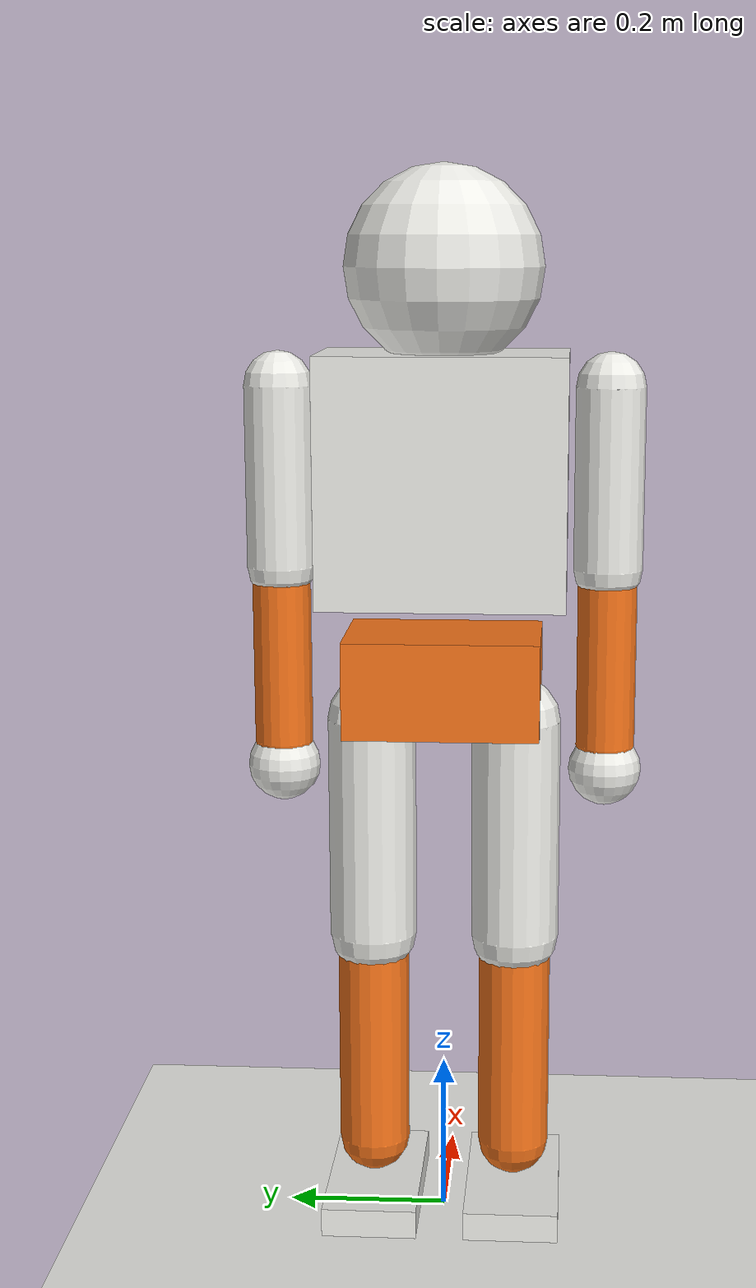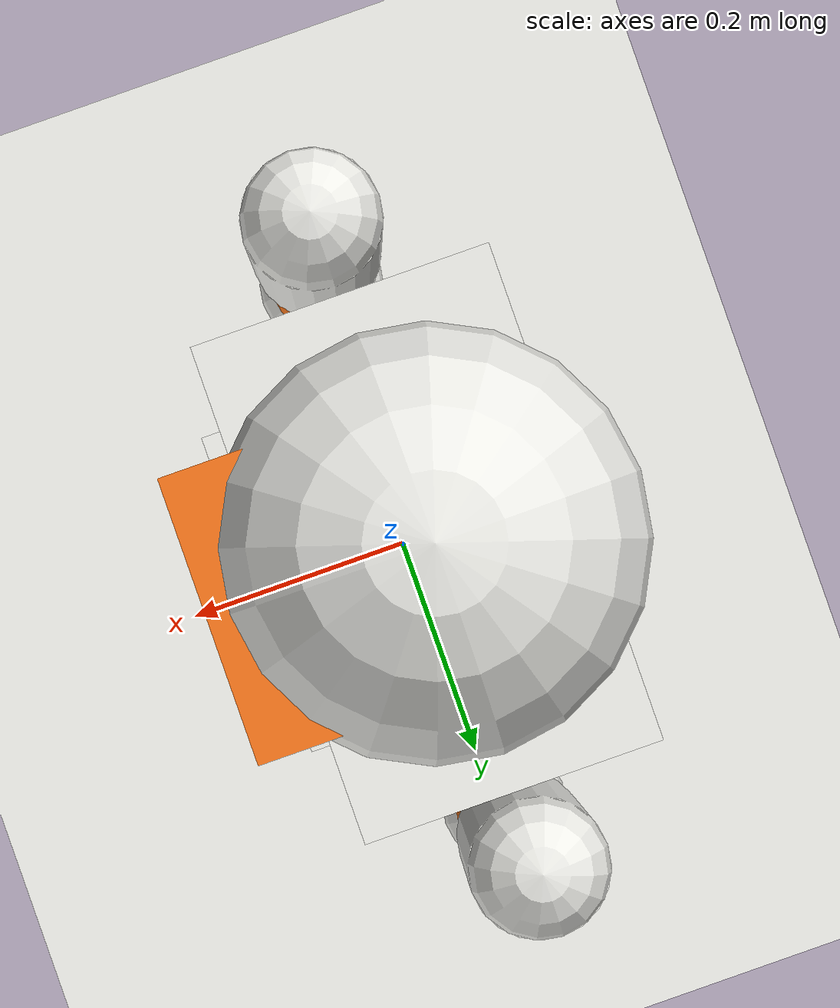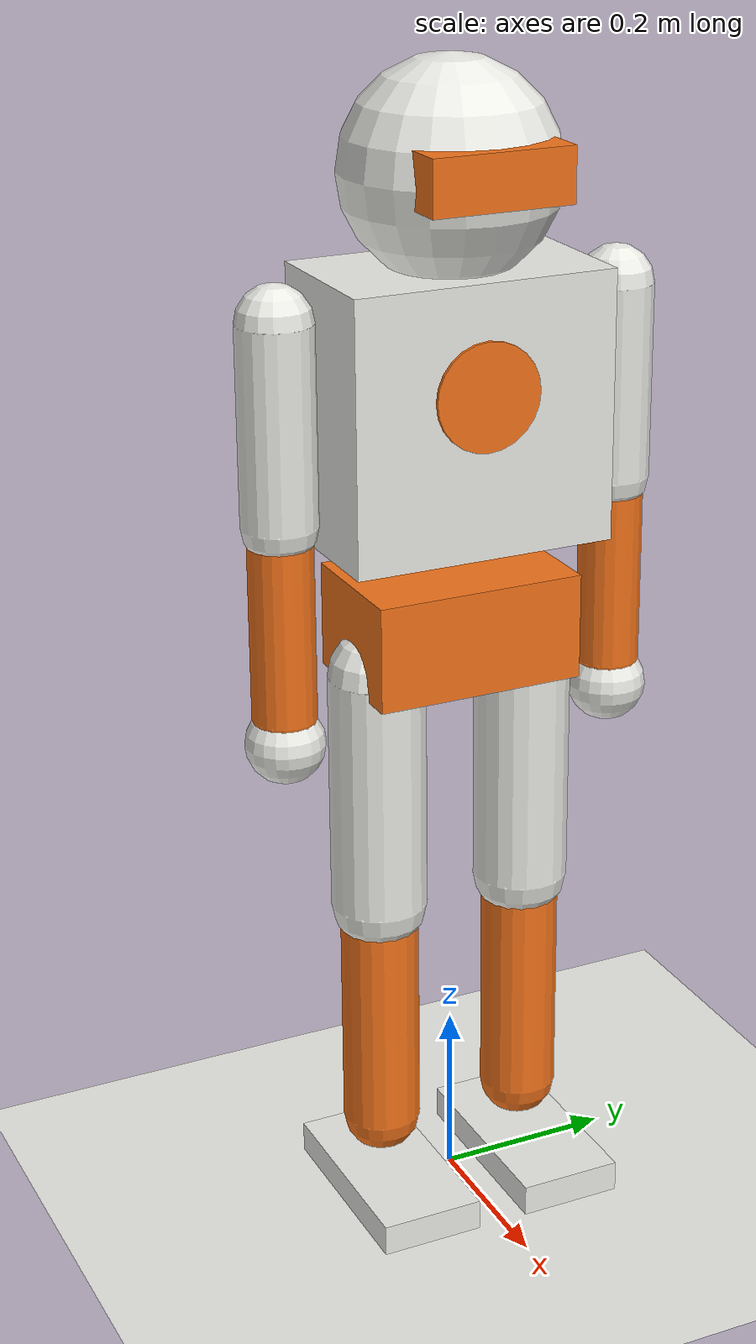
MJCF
<mujoco model="stagger">
  <compiler angle="radian" autolimits="true"/>

  <!-- 2 ms physics step; the policy runs every 10 steps (50 Hz).
       implicitfast integrates joint damping implicitly, which keeps stiff PD gains stable. -->
  <option timestep="0.002" integrator="implicitfast"/>

  <default>
    <joint damping="2" armature="0.01" frictionloss="0.1"/>
    <geom contype="2" conaffinity="1" condim="3" friction="1.0 0.005 0.0001" rgba="0.92 0.92 0.9 1"/>
    <!-- PD position servos. kp is stiffness (N*m/rad); forcerange is the torque limit. -->
    <position kp="30" forcerange="-20 20"/>

    <default class="leg">
      <joint damping="4" armature="0.02"/>
      <position kp="250" forcerange="-90 90"/>
    </default>
    <!-- Ankles must out-muscle gravity: holding the body as an inverted pendulum
         needs total ankle stiffness > m*g*h_com ~ 30*9.81*0.75 ~ 220 N*m/rad. -->
    <default class="ankle">
      <joint damping="3" armature="0.01"/>
      <position kp="200" forcerange="-45 45"/>
    </default>
    <default class="arm">
      <joint damping="1" armature="0.005"/>
      <position kp="30" forcerange="-20 20"/>
    </default>
    <default class="accent">
      <geom rgba="0.95 0.45 0.1 1"/>
    </default>
  </default>

  <visual>
    <headlight ambient="0.35 0.35 0.35" diffuse="0.6 0.6 0.6"/>
    <global offwidth="1280" offheight="720"/>
  </visual>

  <asset>
    <texture name="grid" type="2d" builtin="checker" width="512" height="512" rgb1="0.42 0.42 0.42" rgb2="0.36 0.36 0.36"/>
    <material name="concrete" texture="grid" texrepeat="8 8" reflectance="0.05"/>
  </asset>

  <worldbody>
    <light name="key" pos="2 -2 4" dir="-0.5 0.5 -1" diffuse="0.7 0.7 0.7"/>
    <geom name="floor" type="plane" size="20 20 0.1" material="concrete" contype="1" conaffinity="1"/>

    <!-- Video camera: roughly where the shooter stands (+x, slightly to the side), always aimed at the pelvis. -->
    <camera name="front" mode="targetbody" target="pelvis" pos="2.5 -1.1 1.2"/>

    <!-- pelvis is the floating base. Its height is set by the "stand" keyframe below. -->
    <body name="pelvis" pos="0 0 0.705">
      <freejoint name="root"/>
      <geom name="pelvis" type="box" size="0.08 0.12 0.06" mass="5" class="accent"/>

      <!-- torso and head are welded to the pelvis (no waist / neck joint in v1).
           They are separate bodies only so hits can be grouped into regions. -->
      <body name="torso" pos="0 0 0.08">
        <geom name="torso" type="box" pos="0 0 0.17" size="0.09 0.15 0.15" mass="9"/>
        <!-- target marking on the chest: thin disc, part of the torso body -->
        <geom name="torso_mark" type="cylinder" pos="0.092 0 0.2" zaxis="1 0 0" size="0.06 0.002" mass="0.01" class="accent" contype="0" conaffinity="0"/>

        <body name="head" pos="0 0 0.42">
          <geom name="neck" type="capsule" fromto="0 0 -0.1 0 0 -0.04" size="0.04" mass="0.3"/>
          <geom name="head" type="sphere" size="0.12" mass="2.7"/>
          <geom name="visor" type="box" pos="0.1 0 0.01" size="0.025 0.08 0.03" mass="0.01" class="accent" contype="0" conaffinity="0"/>
        </body>

        <!-- Arms: shoulder pitch (y), shoulder roll (x), elbow (bends the forearm forward). -->
        <body name="upper_arm_L" pos="0 0.2 0.28">
          <joint name="shoulder_pitch_L" class="arm" axis="0 1 0" range="-2.6 1.0"/>
          <joint name="shoulder_roll_L" class="arm" axis="1 0 0" range="-0.3 2.0"/>
          <geom name="upper_arm_L" type="capsule" fromto="0 0 0 0 0 -0.22" size="0.042" mass="1.0"/>
          <body name="lower_arm_L" pos="0 0 -0.24">
            <joint name="elbow_L" class="arm" axis="0 -1 0" range="0 2.4"/>
            <geom name="lower_arm_L" type="capsule" fromto="0 0 0 0 0 -0.2" size="0.036" mass="0.6" class="accent"/>
            <geom name="hand_L" type="sphere" pos="0 0 -0.23" size="0.045" mass="0.2"/>
          </body>
        </body>
        <body name="upper_arm_R" pos="0 -0.2 0.28">
          <joint name="shoulder_pitch_R" class="arm" axis="0 1 0" range="-2.6 1.0"/>
          <joint name="shoulder_roll_R" class="arm" axis="1 0 0" range="-2.0 0.3"/>
          <geom name="upper_arm_R" type="capsule" fromto="0 0 0 0 0 -0.22" size="0.042" mass="1.0"/>
          <body name="lower_arm_R" pos="0 0 -0.24">
            <joint name="elbow_R" class="arm" axis="0 -1 0" range="0 2.4"/>
            <geom name="lower_arm_R" type="capsule" fromto="0 0 0 0 0 -0.2" size="0.036" mass="0.6" class="accent"/>
            <geom name="hand_R" type="sphere" pos="0 0 -0.23" size="0.045" mass="0.2"/>
          </body>
        </body>
      </body>

      <body name="thigh_L" pos="0 0.09 -0.05">
        <joint name="hip_yaw_L" class="leg" axis="0 0 1" range="-0.5 0.5"/>
        <joint name="hip_roll_L" class="leg" axis="1 0 0" range="-0.3 0.6"/>
        <joint name="hip_pitch_L" class="leg" axis="0 1 0" range="-1.6 0.6"/>
        <geom name="thigh_L" type="capsule" fromto="0 0 0 0 0 -0.28" size="0.055" mass="2.5"/>
        <body name="shin_L" pos="0 0 -0.3">
          <joint name="knee_L" class="leg" axis="0 1 0" range="0 2.2"/>
          <geom name="shin_L" type="capsule" fromto="0 0 0 0 0 -0.26" size="0.045" mass="1.6" class="accent"/>
          <body name="foot_L" pos="0 0 -0.3">
            <joint name="ankle_pitch_L" class="ankle" axis="0 1 0" range="-0.8 0.6"/>
            <joint name="ankle_roll_L" class="ankle" axis="1 0 0" range="-0.4 0.4"/>
            <geom name="foot_L" type="box" pos="0.02 0 -0.04" size="0.12 0.06 0.02" mass="0.8"/>
          </body>
        </body>
      </body>
      <body name="thigh_R" pos="0 -0.09 -0.05">
        <joint name="hip_yaw_R" class="leg" axis="0 0 1" range="-0.5 0.5"/>
        <joint name="hip_roll_R" class="leg" axis="1 0 0" range="-0.6 0.3"/>
        <joint name="hip_pitch_R" class="leg" axis="0 1 0" range="-1.6 0.6"/>
        <geom name="thigh_R" type="capsule" fromto="0 0 0 0 0 -0.28" size="0.055" mass="2.5"/>
        <body name="shin_R" pos="0 0 -0.3">
          <joint name="knee_R" class="leg" axis="0 1 0" range="0 2.2"/>
          <geom name="shin_R" type="capsule" fromto="0 0 0 0 0 -0.26" size="0.045" mass="1.6" class="accent"/>
          <body name="foot_R" pos="0 0 -0.3">
            <joint name="ankle_pitch_R" class="ankle" axis="0 1 0" range="-0.8 0.6"/>
            <joint name="ankle_roll_R" class="ankle" axis="1 0 0" range="-0.4 0.4"/>
            <geom name="foot_R" type="box" pos="0.02 0 -0.04" size="0.12 0.06 0.02" mass="0.8"/>
          </body>
        </body>
      </body>
    </body>
  </worldbody>

  <!-- Leg-vs-leg contacts only (see header comment). -->
  <contact>
    <pair geom1="foot_L" geom2="foot_R"/>
    <pair geom1="foot_L" geom2="shin_R"/>
    <pair geom1="foot_R" geom2="shin_L"/>
    <pair geom1="shin_L" geom2="shin_R"/>
    <pair geom1="thigh_L" geom2="thigh_R"/>
  </contact>

  <!-- One position actuator per joint, same order as the joints above.
       ctrl is a target joint angle (rad); the policy outputs default_qpos + action_scale * a. -->
  <actuator>
    <position name="shoulder_pitch_L" joint="shoulder_pitch_L" class="arm" ctrlrange="-2.6 1.0"/>
    <position name="shoulder_roll_L" joint="shoulder_roll_L" class="arm" ctrlrange="-0.3 2.0"/>
    <position name="elbow_L" joint="elbow_L" class="arm" ctrlrange="0 2.4"/>
    <position name="shoulder_pitch_R" joint="shoulder_pitch_R" class="arm" ctrlrange="-2.6 1.0"/>
    <position name="shoulder_roll_R" joint="shoulder_roll_R" class="arm" ctrlrange="-2.0 0.3"/>
    <position name="elbow_R" joint="elbow_R" class="arm" ctrlrange="0 2.4"/>
    <position name="hip_yaw_L" joint="hip_yaw_L" class="leg" ctrlrange="-0.5 0.5"/>
    <position name="hip_roll_L" joint="hip_roll_L" class="leg" ctrlrange="-0.3 0.6"/>
    <position name="hip_pitch_L" joint="hip_pitch_L" class="leg" ctrlrange="-1.6 0.6"/>
    <position name="knee_L" joint="knee_L" class="leg" ctrlrange="0 2.2"/>
    <position name="ankle_pitch_L" joint="ankle_pitch_L" class="ankle" ctrlrange="-0.8 0.6"/>
    <position name="ankle_roll_L" joint="ankle_roll_L" class="ankle" ctrlrange="-0.4 0.4"/>
    <position name="hip_yaw_R" joint="hip_yaw_R" class="leg" ctrlrange="-0.5 0.5"/>
    <position name="hip_roll_R" joint="hip_roll_R" class="leg" ctrlrange="-0.6 0.3"/>
    <position name="hip_pitch_R" joint="hip_pitch_R" class="leg" ctrlrange="-1.6 0.6"/>
    <position name="knee_R" joint="knee_R" class="leg" ctrlrange="0 2.2"/>
    <position name="ankle_pitch_R" joint="ankle_pitch_R" class="ankle" ctrlrange="-0.8 0.6"/>
    <position name="ankle_roll_R" joint="ankle_roll_R" class="ankle" ctrlrange="-0.4 0.4"/>
  </actuator>

  <keyframe>
    <key name="stand"
         qpos="0 0 0.705 1 0 0 0
               0 0.15 0.3
               0 -0.15 0.3
               0 0 -0.15 0.3 -0.15 0
               0 0 -0.15 0.3 -0.15 0"
         ctrl="0 0.15 0.3
               0 -0.15 0.3
               0 0 -0.15 0.3 -0.15 0
               0 0 -0.15 0.3 -0.15 0"/>
  </keyframe>
</mujoco>
